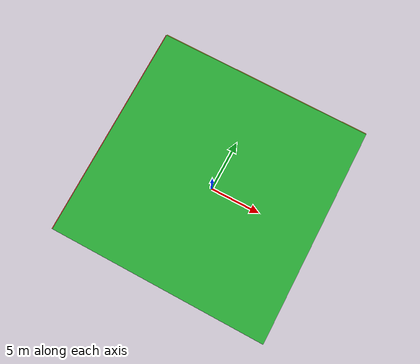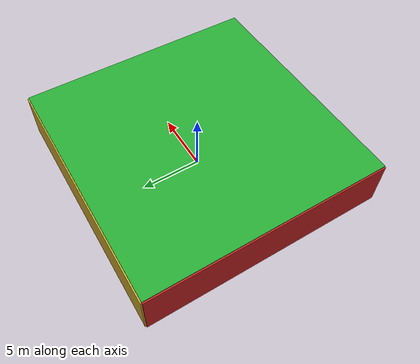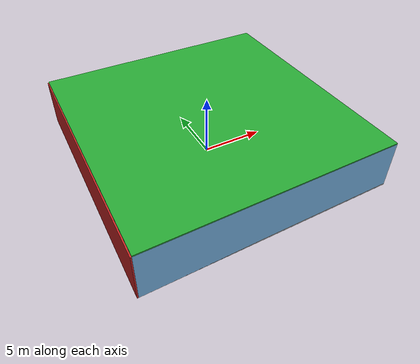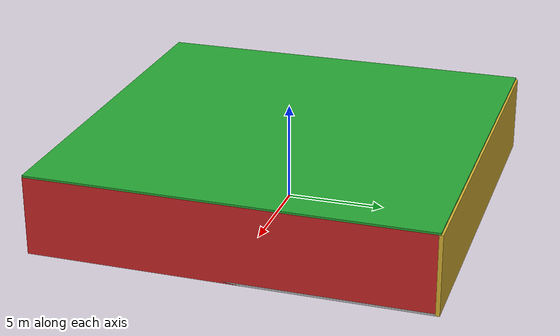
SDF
<sdf version="1.4">
 <world name="default">
  <physics type="ode">
   <max_step_size>0.001</max_step_size>
   <real_time_factor>1</real_time_factor>
   <real_time_update_rate>1000</real_time_update_rate>
   <gravity>0 0 -9.8</gravity>
  </physics>
  <scene><ambient>0.4 0.4 0.4 1</ambient><background>0.7 0.7 0.7 1</background><shadows>1</shadows></scene>
  <model name="Surrounding">
   <static>1</static>
   <link name="Ceiling">
    <collision name="Ceiling_Collision"><geometry><box><size>20 20 0.1</size></box></geometry></collision>
    <visual name="Ceiling_Visual">
     <geometry><box><size>20 20 0.1</size></box></geometry>
     <material>
      <script><uri>file://media/materials/scripts/gazebo.material</uri><name>Gazebo/GreenGlow</name></script>
     </material>
    </visual>
    <pose>0 0 4.05 0 0 0</pose>
   </link>
   <link name="Wall_South">
    <collision name="Wall_South_Collision">
     <geometry><box><size>20 0 4</size></box></geometry>
     <pose>0 0 2 0 -0 0</pose>
    </collision>
    <visual name="Wall_South_Visual">
     <pose>0 0 2 0 -0 0</pose>
     <geometry><box><size>20 0 4</size></box></geometry>
     <material>
      <script><uri>file://media/materials/scripts/gazebo.material</uri><name>Gazebo/SkyBlue</name></script>
     </material>
    </visual>
    <velocity_decay><linear>0</linear><angular>0</angular></velocity_decay>
    <pose>0 -10 0 0 -0 0</pose>
   </link>
   <link name="Wall_East">
    <collision name="Wall_21_Collision">
     <geometry><box><size>20 0 4</size></box></geometry>
     <pose>0 0 2 0 -0 0</pose>
    </collision>
    <visual name="Wall_21_Visual">
     <pose>0 0 2 0 -0 0</pose>
     <geometry><box><size>20 0 4</size></box></geometry>
     <material>
      <script><uri>file://media/materials/scripts/gazebo.material</uri><name>Gazebo/RedBright</name></script>
     </material>
    </visual>
    <velocity_decay><linear>0</linear><angular>0</angular></velocity_decay>
    <pose>10 0 0 0 -0 1.5708</pose>
   </link>
   <link name="Wall_North">
    <collision name="Wall_22_Collision">
     <geometry><box><size>20 0.2 4</size></box></geometry>
     <pose>0 0 2 0 -0 0</pose>
    </collision>
    <visual name="Wall_22_Visual">
     <pose>0 0 2 0 -0 0</pose>
     <geometry><box><size>20 0.2 4</size></box></geometry>
     <material>
      <script><uri>file://media/materials/scripts/gazebo.material</uri><name>Gazebo/Gold</name></script>
     </material>
    </visual>
    <velocity_decay><linear>0</linear><angular>0</angular></velocity_decay>
    <pose>0 10 0 0 -0 0</pose>
   </link>
   <link name="Wall_West">
    <collision name="Wall_23_Collision">
     <geometry><box><size>20 0.2 4</size></box></geometry>
     <pose>0 0 2 0 -0 0</pose>
    </collision>
    <visual name="Wall_23_Visual">
     <pose>0 0 2 0 -0 0</pose>
     <geometry><box><size>20 0.2 4</size></box></geometry>
     <material>
      <script><uri>file://media/materials/scripts/gazebo.material</uri><name>Gazebo/RedGlow</name></script>
     </material>
    </visual>
    <velocity_decay><linear>0</linear><angular>0</angular></velocity_decay>
    <pose>-10 0 0 0 0 -1.5708</pose>
   </link>
   <link name="Ground_link">
    <collision name="collision">
     <pose>0 0 .05 0 -0 0</pose>
     <geometry><box><size>20 20 0.1</size></box></geometry>
    </collision>
    <visual name="visual">
     <pose>0 0 .05 0 -0 0</pose>
     <geometry><box><size>20 20 0.1</size></box></geometry>
     <material>
      <script><uri>file://media/materials/scripts/gazebo.material</uri><name>Gazebo/LightOn</name></script>
     </material>
    </visual>
   </link>
   <static>1</static>
  </model>
  <spherical_coordinates>
   <surface_model>EARTH_WGS84</surface_model>
   <latitude_deg>0</latitude_deg>
   <longitude_deg>0</longitude_deg>
   <elevation>0</elevation>
   <heading_deg>0</heading_deg>
  </spherical_coordinates>
  <light name="lightball_0" type="diffuse">
   <diffuse>0.8 0.8 0.8 1</diffuse>
   <specular>0.2 0.2 0.2 1</specular>
   <attenuation>
    <range>100</range>
    <constant>0.7</constant>
    <linear>0.01</linear>
    <quadratic>0.001</quadratic>
   </attenuation>
   <direction>-0.5 0.1 -0.9</direction>
   <pose>-1.94570622351 -1.34769268395 2.19718437943 0 0 0</pose>
  </light>
  <light name="lightball_1" type="diffuse">
   <diffuse>0.8 0.8 0.8 1</diffuse>
   <specular>0.2 0.2 0.2 1</specular>
   <attenuation>
    <range>100</range>
    <constant>0.7</constant>
    <linear>0.01</linear>
    <quadratic>0.001</quadratic>
   </attenuation>
   <direction>-0.5 0.1 -0.9</direction>
   <pose>-9.14987383457 -9.9957081882 0.831487475575 0 0 0</pose>
  </light>
  <include><uri>model://cabinet</uri><pose>-4.86041710078 -1.37877027244 0 0 0 3.0053602655</pose></include>
  <include><uri>model://cabinet</uri><pose>-5.06449125444 5.52544488325 0 0 0 0.0051721702289</pose></include>
  <include><uri>model://cabinet</uri><pose>1.24484026738 -6.76550731513 0 0 0 0.0884223047986</pose></include>
  <include><uri>model://cabinet</uri><pose>5.03053157974 -0.815101848884 0 0 0 2.73104723136</pose></include>
  <include><uri>model://table</uri><pose>7.72078406494 -8.64941599485 0 0 0 0.0605969283366</pose></include>
  <include><uri>model://cabinet</uri><pose>6.84755142031 3.98338475531 0 0 0 0.256885631887</pose></include>
 </world>
</sdf>

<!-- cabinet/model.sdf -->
<sdf version="1.5">
  <model name="cabinet">
    <static>true</static>
    <link name="cabinet_bottom_plate">
      <inertial>
        <pose>0 0 -1 0 0 0</pose>
        <inertia>
          <ixx>2.050000</ixx>
          <ixy>0</ixy>
          <ixz>0</ixz>
          <iyy>2.050000</iyy>
          <iyz>0</iyz>
          <izz>2.050000</izz>
        </inertia>
        <mass>25.000000</mass>
      </inertial>
      <collision name="cabinet_bottom_plate_geom">
        <pose>0 0 0.010000 0 0 0</pose>
        <geometry>
          <box>
            <size>0.450000 0.450000 0.020000</size>
          </box>
        </geometry>
      </collision>
      <visual name="cabinet_bottom_plate_geom_visual">
        <pose>0 0 0.010000 0 0 0</pose>
        <geometry>
          <box>
            <size>0.450000 0.450000 0.020000</size>
          </box>
        </geometry>
        <material>
          <script>
            <uri>model://media/materials/scripts/gazebo.material</uri>
            <name>Gazebo/Wood</name>
          </script>
        </material>
      </visual>
      <collision name="cabinet_bottom_plate_geom_cabinet_back_plate">
        <pose>0.235000 0 0.510000 0 0 0</pose>
        <geometry>
          <box>
            <size>0.020000 0.450000 1.020000</size>
          </box>
        </geometry>
      </collision>
      <visual name="cabinet_bottom_plate_geom_cabinet_back_plate_visual">
        <pose>0.235000 0 0.510000 0 0 0</pose>
        <geometry>
          <box>
            <size>0.020000 0.450000 1.020000</size>
          </box>
        </geometry>
        <material>
          <script>
            <uri>model://media/materials/scripts/gazebo.material</uri>
            <name>Gazebo/Wood</name>
          </script>
        </material>
      </visual>
      <collision name="cabinet_bottom_plate_geom_cabinet_left_plate">
        <pose>0 0.235000 0.510000 0 0 0</pose>
        <geometry>
          <box>
            <size>0.450000 0.020000 1.020000</size>
          </box>
        </geometry>
      </collision>
      <visual name="cabinet_bottom_plate_geom_cabinet_left_plate_visual">
        <pose>0 0.235000 0.510000 0 0 0</pose>
        <geometry>
          <box>
            <size>0.450000 0.020000 1.020000</size>
          </box>
        </geometry>
        <material>
          <script>
            <uri>model://media/materials/scripts/gazebo.material</uri>
            <name>Gazebo/Wood</name>
          </script>
        </material>
      </visual>
      <collision name="cabinet_bottom_plate_geom_cabinet_middle_plate">
        <pose>0 0 0.510000 0 0 0</pose>
        <geometry>
          <box>
            <size>0.450000 0.450000 0.020000</size>
          </box>
        </geometry>
      </collision>
      <visual name="cabinet_bottom_plate_geom_cabinet_middle_plate_visual">
        <pose>0 0 0.510000 0 0 0</pose>
        <geometry>
          <box>
            <size>0.450000 0.450000 0.020000</size>
          </box>
        </geometry>
        <material>
          <script>
            <uri>model://media/materials/scripts/gazebo.material</uri>
            <name>Gazebo/Wood</name>
          </script>
        </material>
      </visual>
      <collision name="cabinet_bottom_plate_geom_cabinet_right_plate">
        <pose>0 -0.235000 0.510000 0 0 0</pose>
        <geometry>
          <box>
            <size>0.450000 0.020000 1.020000</size>
          </box>
        </geometry>
      </collision>
      <visual name="cabinet_bottom_plate_geom_cabinet_right_plate_visual">
        <pose>0 -0.235000 0.510000 0 0 0</pose>
        <geometry>
          <box>
            <size>0.450000 0.020000 1.020000</size>
          </box>
        </geometry>
        <material>
          <script>
            <uri>model://media/materials/scripts/gazebo.material</uri>
            <name>Gazebo/Wood</name>
          </script>
        </material>
      </visual>
      <collision name="cabinet_bottom_plate_geom_cabinet_top_plate">
        <pose>0 0 1.010000 0 0 0</pose>
        <geometry>
          <box>
            <size>0.450000 0.450000 0.020000</size>
          </box>
        </geometry>
      </collision>
      <visual name="cabinet_bottom_plate_geom_cabinet_top_plate_visual">
        <pose>0 0 1.010000 0 0 0</pose>
        <geometry>
          <box>
            <size>0.450000 0.450000 0.020000</size>
          </box>
        </geometry>
        <material>
          <script>
            <uri>model://media/materials/scripts/gazebo.material</uri>
            <name>Gazebo/Wood</name>
          </script>
        </material>
      </visual>
    </link>
  </model>
</sdf>

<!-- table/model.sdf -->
<sdf version="1.5">
  <model name="table">
    <static>true</static>
    <link name="link">
      <collision name="surface">
        <pose>0 0 1.0 0 0 0</pose>
        <geometry>
          <box>
            <size>1.5 0.8 0.03</size>
          </box>
        </geometry>
        <surface>
          <friction>
            <ode>
              <mu>0.6</mu>
              <mu2>0.6</mu2>
            </ode>
          </friction>
        </surface>
      </collision>
      <visual name="visual1">
        <pose>0 0 1.0 0 0 0</pose>
        <geometry>
          <box>
            <size>1.5 0.8 0.03</size>
          </box>
        </geometry>
        <material>
          <script>
            <uri>model://media/materials/scripts/gazebo.material</uri>
            <name>Gazebo/Wood</name>
          </script>
        </material>
      </visual>
      <collision name="front_left_leg">
        <pose>0.68 0.38 0.5 0 0 0</pose>
        <geometry>
          <cylinder>
            <radius>0.02</radius>
            <length>1.0</length>
          </cylinder>
        </geometry>
      </collision>
      <visual name="front_left_leg">
        <pose>0.68 0.38 0.5 0 0 0</pose>
        <geometry>
          <cylinder>
            <radius>0.02</radius>
            <length>1.0</length>
          </cylinder>
        </geometry>
        <material>
          <script>
            <uri>model://media/materials/scripts/gazebo.material</uri>
            <name>Gazebo/Grey</name>
          </script>
        </material>
      </visual>
      <collision name="front_right_leg">
        <pose>0.68 -0.38 0.5 0 0 0</pose>
        <geometry>
          <cylinder>
            <radius>0.02</radius>
            <length>1.0</length>
          </cylinder>
        </geometry>
      </collision>
      <visual name="front_right_leg">
        <pose>0.68 -0.38 0.5 0 0 0</pose>
        <geometry>
          <cylinder>
            <radius>0.02</radius>
            <length>1.0</length>
          </cylinder>
        </geometry>
        <material>
          <script>
            <uri>model://media/materials/scripts/gazebo.material</uri>
            <name>Gazebo/Grey</name>
          </script>
        </material>
      </visual>
      <collision name="back_right_leg">
        <pose>-0.68 -0.38 0.5 0 0 0</pose>
        <geometry>
          <cylinder>
            <radius>0.02</radius>
            <length>1.0</length>
          </cylinder>
        </geometry>
      </collision>
      <visual name="back_right_leg">
        <pose>-0.68 -0.38 0.5 0 0 0</pose>
        <geometry>
          <cylinder>
            <radius>0.02</radius>
            <length>1.0</length>
          </cylinder>
        </geometry>
        <material>
          <script>
            <uri>model://media/materials/scripts/gazebo.material</uri>
            <name>Gazebo/Grey</name>
          </script>
        </material>
      </visual>
      <collision name="back_left_leg">
        <pose>-0.68 0.38 0.5 0 0 0</pose>
        <geometry>
          <cylinder>
            <radius>0.02</radius>
            <length>1.0</length>
          </cylinder>
        </geometry>
      </collision>
      <visual name="back_left_leg">
        <pose>-0.68 0.38 0.5 0 0 0</pose>
        <geometry>
          <cylinder>
            <radius>0.02</radius>
            <length>1.0</length>
          </cylinder>
        </geometry>
        <material>
          <script>
            <uri>model://media/materials/scripts/gazebo.material</uri>
            <name>Gazebo/Grey</name>
          </script>
        </material>
      </visual>
    </link>
  </model>
</sdf>
